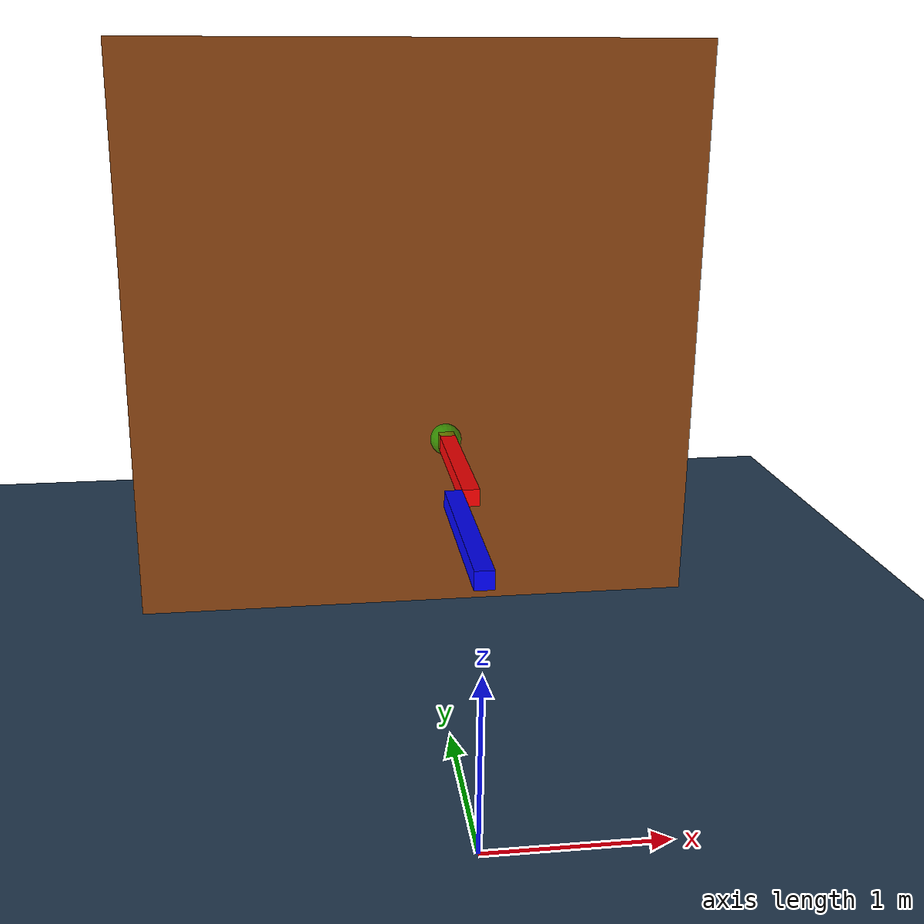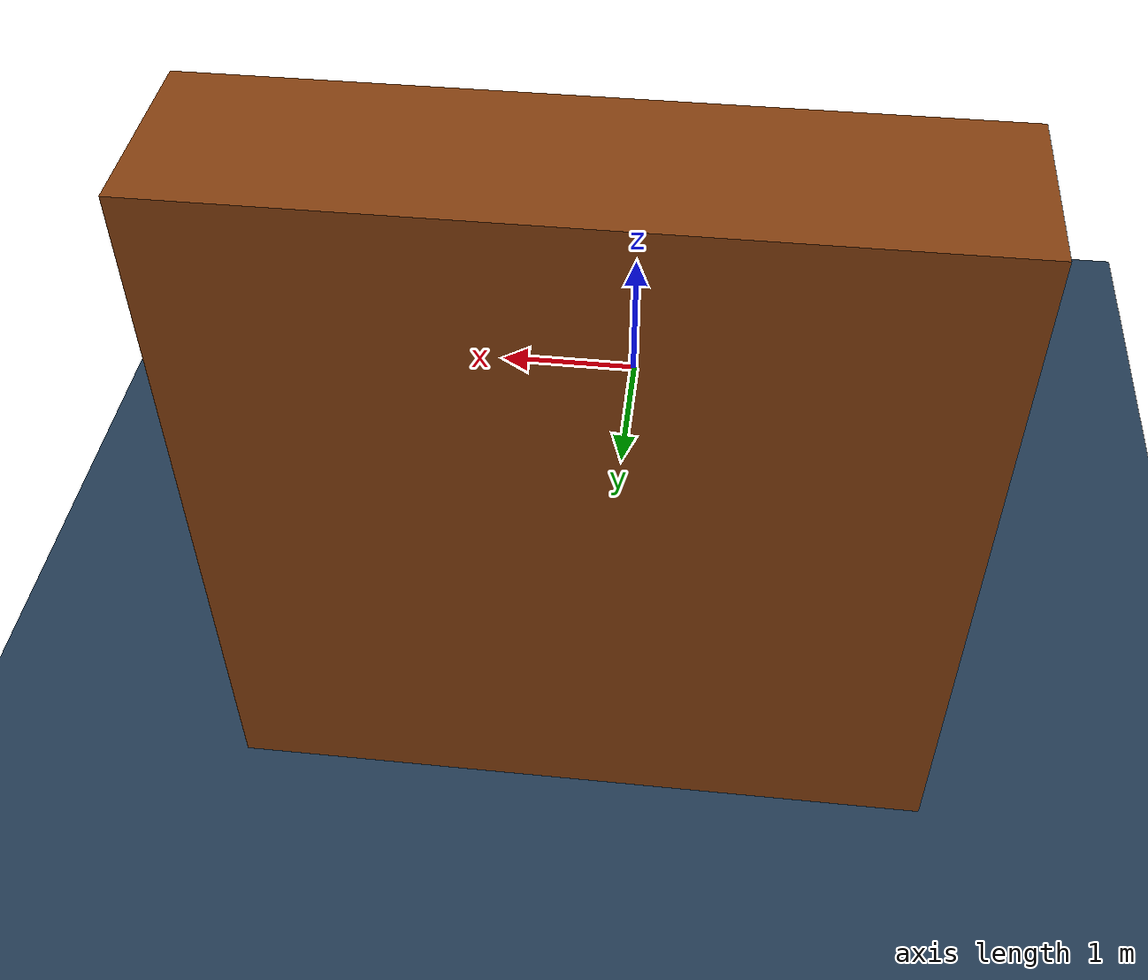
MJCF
<mujoco model="dbpen scene">
  <include file="double_pendulum.xml"/>

  <statistic center="0.2 0 0.4" extent=".8"/>

  <visual>
    <headlight diffuse="0.6 0.6 0.6" ambient="0.3 0.3 0.3" specular="0 0 0"/>
    <rgba haze="0.15 0.25 0.35 1"/>
    <global azimuth="120" elevation="-20"/>
  </visual>

  <asset>
    <texture type="skybox" builtin="gradient" rgb1="0.3 0.5 0.7" rgb2="0 0 0" width="512" height="3072"/>
    <texture type="2d" name="groundplane" builtin="checker" mark="edge" rgb1="0.2 0.3 0.4" rgb2="0.1 0.2 0.3"
      markrgb="0.8 0.8 0.8" width="300" height="300"/>
    <material name="groundplane" texture="groundplane" texuniform="true" texrepeat="5 5" reflectance="0.2"/>
    <material name="wall_material" rgba="0.55 0.27 0.07 1.0"/>
  </asset>

  <worldbody>
    <light pos="0 0 1.5" dir="0 0 -1" directional="true"/>
    <geom name="floor" size="0 0 0.05" type="plane" material="groundplane"/>
    <geom name="wall" pos="0 3.2 2.0" size="2.0 0.5 2.0" type="box" material="wall_material"/>
  </worldbody>

  <sensor>
    <jointpos name="joint1_pos" joint="joint1"/>
    <jointpos name="joint2_pos" joint="joint2"/>

    <jointvel name="joint1_vel" joint="joint1"/>
    <jointvel name="joint2_vel" joint="joint2"/>

    <jointactuatorfrc name="joint1_tau" joint="joint1"/>
    <jointactuatorfrc name="joint2_tau" joint="joint2"/>
  </sensor>
</mujoco>

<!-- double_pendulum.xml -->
<mujoco model="double_pendulum">
  <compiler angle="radian" />

  <option integrator="implicitfast" timestep="0.002"/>

  <asset>
    <material name="black" rgba="0.0 0.0 0.0 1.0" />
    <material name="blue" rgba="0.0 0.0 1.0 1.0" />
    <material name="red" rgba="1.0 0.0 0.0 1.0" />
  </asset>

  <worldbody>
    <body name="base_link" pos="0 0 0">
      <body name="link1" pos="0 0.5 1.5" euler="-1.5708 0 0">
        <inertial pos="0 0 0" euler="0 0 0" mass="1.0" diaginertia="0.03 0.04 0.05"/>
        <geom type="box" size="0.05 0.05 0.5" material="blue"/>
        <joint name="joint1" type="hinge" pos="0 0 -0.5" axis="1 0 0"/>

        <body name="link2" pos="0.1 0 1.0">
          <inertial pos="0 0 0" euler="0 0 0" mass="1.0" diaginertia="0.07 0.06 0.08"/>
          <geom type="box" size="0.05 0.05 0.5" material="red"/>
          <joint name="joint2" type="hinge" pos="0 0 -0.5" axis="1 0 0"/>
          <site name ="ee_site" type="sphere" pos="0 0 0.5" size="0.1" rgba="0 0.9 0 0.5" />
        </body>
      </body>
    </body>
  </worldbody>

  <actuator>
    <motor joint="joint1" name="motor1" gear="1"/>
    <motor joint="joint2" name="motor2" gear="1"/>
  </actuator>

  <keyframe>
    <key name="home" qpos="-0.7854 1.5708" ctrl="0 0"/>
  </keyframe>
</mujoco>
